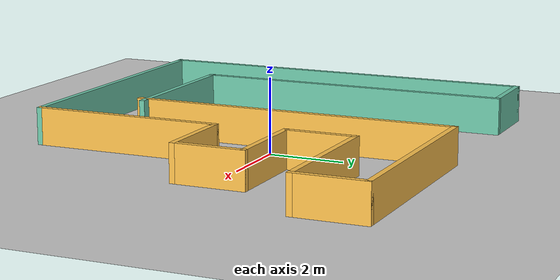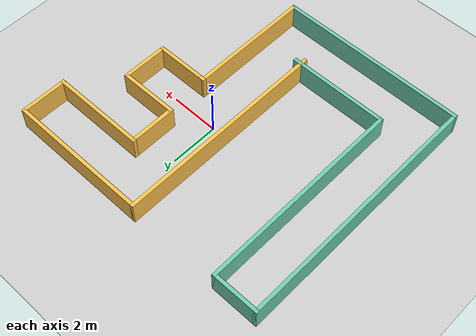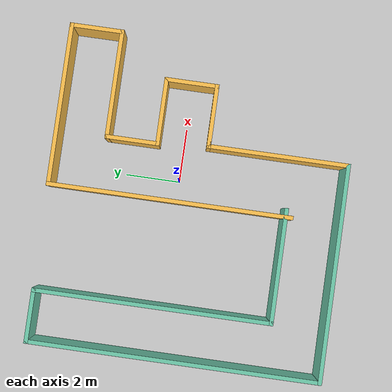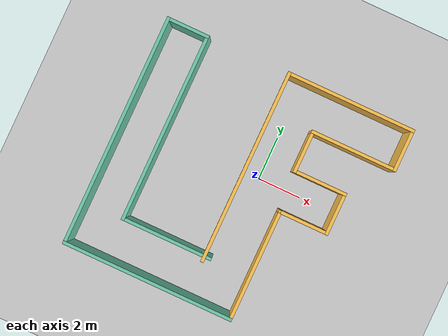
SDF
<sdf version="1.6">
 <world name="default">
  <light name="sun" type="directional">
   <pose>0 0 10 0 -0 0</pose>
   <diffuse>0.8 0.8 0.8 1</diffuse>
   <specular>0.2 0.2 0.2 1</specular>
   <attenuation>
    <range>1000</range>
    <constant>0.9</constant>
    <linear>0.01</linear>
    <quadratic>0.001</quadratic>
   </attenuation>
   <direction>-0.5 0.1 -0.9</direction>
  </light>
  <model name="ground_plane">
   <static>1</static>
   <link name="link">
    <collision name="collision">
     <geometry><plane><normal>0 0 1</normal><size>100 100</size></plane></geometry>
     <surface>
      <contact><collide_bitmask>65535</collide_bitmask></contact>
      <friction><ode><mu>100</mu><mu2>50</mu2></ode></friction>
     </surface>
    </collision>
    <visual name="visual">
     <cast_shadows>0</cast_shadows>
     <geometry><plane><normal>0 0 1</normal><size>100 100</size></plane></geometry>
     <material>
      <script><uri>file://media/materials/scripts/gazebo.material</uri><name>Gazebo/Grey</name></script>
     </material>
    </visual>
   </link>
  </model>
  <gravity>0 0 -9.8</gravity>
  <magnetic_field>6e-06 2.3e-05 -4.2e-05</magnetic_field>
  <atmosphere type="adiabatic"/>
  <physics name="default_physics" default="0" type="ode">
   <max_step_size>0.001</max_step_size>
   <real_time_factor>1</real_time_factor>
   <real_time_update_rate>1000</real_time_update_rate>
  </physics>
  <scene><ambient>0.4 0.4 0.4 1</ambient><background>0.7 0.7 0.7 1</background><shadows>1</shadows></scene>
  <spherical_coordinates>
   <surface_model>EARTH_WGS84</surface_model>
   <latitude_deg>0</latitude_deg>
   <longitude_deg>0</longitude_deg>
   <elevation>0</elevation>
   <heading_deg>0</heading_deg>
  </spherical_coordinates>
  <model name="LF">
   <pose>-0.690322 -0.667378 0 0 -0 0</pose>
   <link name="Wall_0">
    <collision name="Wall_0_Collision">
     <geometry><box><size>9 0.15 1</size></box></geometry>
     <pose>0 0 0.5 0 -0 0</pose>
    </collision>
    <visual name="Wall_0_Visual">
     <pose>0 0 0.5 0 -0 0</pose>
     <geometry><box><size>9 0.15 1</size></box></geometry>
     <material>
      <script><uri>file://media/materials/scripts/gazebo.material</uri><name>Gazebo/Grey</name></script>
      <ambient>1 0.764706 0.305882 1</ambient>
     </material>
     <meta><layer>0</layer></meta>
    </visual>
    <pose>-0.075094 0.9 0 0 -0 1.5708</pose>
   </link>
   <link name="Wall_1">
    <collision name="Wall_1_Collision">
     <geometry><box><size>6 0.15 1</size></box></geometry>
     <pose>0 0 0.5 0 -0 0</pose>
    </collision>
    <visual name="Wall_1_Visual">
     <pose>0 0 0.5 0 -0 0</pose>
     <geometry><box><size>6 0.15 1</size></box></geometry>
     <material>
      <script><uri>file://media/materials/scripts/gazebo.material</uri><name>Gazebo/Grey</name></script>
      <ambient>1 0.764706 0.305882 1</ambient>
     </material>
     <meta><layer>0</layer></meta>
    </visual>
    <pose>2.84991 5.325 0 0 -0 0</pose>
   </link>
   <link name="Wall_10">
    <collision name="Wall_10_Collision">
     <geometry><box><size>8 0.15 1</size></box></geometry>
     <pose>0 0 0.5 0 -0 0</pose>
    </collision>
    <visual name="Wall_10_Visual">
     <pose>0 0 0.5 0 -0 0</pose>
     <geometry><box><size>8 0.15 1</size></box></geometry>
     <material>
      <script><uri>file://media/materials/scripts/gazebo.material</uri><name>Gazebo/Grey</name></script>
      <ambient>0.435294 0.796078 0.67451 1</ambient>
     </material>
     <meta><layer>0</layer></meta>
    </visual>
    <pose>-1.85009 -5.325 0 0 -0 3.14159</pose>
   </link>
   <link name="Wall_11">
    <collision name="Wall_11_Collision">
     <geometry><box><size>10.75 0.15 1</size></box></geometry>
     <pose>0 0 0.5 0 -0 0</pose>
    </collision>
    <visual name="Wall_11_Visual">
     <pose>0 0 0.5 0 -0 0</pose>
     <geometry><box><size>10.75 0.15 1</size></box></geometry>
     <material>
      <script><uri>file://media/materials/scripts/gazebo.material</uri><name>Gazebo/Grey</name></script>
      <ambient>0.435294 0.796078 0.67451 1</ambient>
     </material>
     <meta><layer>0</layer></meta>
    </visual>
    <pose>-5.77509 -0.025 0 0 -0 1.5708</pose>
   </link>
   <link name="Wall_12">
    <collision name="Wall_12_Collision">
     <geometry><box><size>2 0.15 1</size></box></geometry>
     <pose>0 0 0.5 0 -0 0</pose>
    </collision>
    <visual name="Wall_12_Visual">
     <pose>0 0 0.5 0 -0 0</pose>
     <geometry><box><size>2 0.15 1</size></box></geometry>
     <material>
      <script><uri>file://media/materials/scripts/gazebo.material</uri><name>Gazebo/Grey</name></script>
      <ambient>0.435294 0.796078 0.67451 1</ambient>
     </material>
     <meta><layer>0</layer></meta>
    </visual>
    <pose>-4.85009 5.275 0 0 -0 0</pose>
   </link>
   <link name="Wall_13">
    <collision name="Wall_13_Collision">
     <geometry><box><size>8.75 0.15 1</size></box></geometry>
     <pose>0 0 0.5 0 -0 0</pose>
    </collision>
    <visual name="Wall_13_Visual">
     <pose>0 0 0.5 0 -0 0</pose>
     <geometry><box><size>8.75 0.15 1</size></box></geometry>
     <material>
      <script><uri>file://media/materials/scripts/gazebo.material</uri><name>Gazebo/Grey</name></script>
      <ambient>0.435294 0.796078 0.67451 1</ambient>
     </material>
     <meta><layer>0</layer></meta>
    </visual>
    <pose>-3.92509 0.975 0 0 0 -1.5708</pose>
   </link>
   <link name="Wall_14">
    <collision name="Wall_14_Collision">
     <geometry><box><size>4.25 0.15 1</size></box></geometry>
     <pose>0 0 0.5 0 -0 0</pose>
    </collision>
    <visual name="Wall_14_Visual">
     <pose>0 0 0.5 0 -0 0</pose>
     <geometry><box><size>4.25 0.15 1</size></box></geometry>
     <material>
      <script><uri>file://media/materials/scripts/gazebo.material</uri><name>Gazebo/Grey</name></script>
      <ambient>0.435294 0.796078 0.67451 1</ambient>
     </material>
     <meta><layer>0</layer></meta>
    </visual>
    <pose>-1.87509 -3.325 0 0 -0 0</pose>
   </link>
   <link name="Wall_2">
    <collision name="Wall_2_Collision">
     <geometry><box><size>2 0.15 1</size></box></geometry>
     <pose>0 0 0.5 0 -0 0</pose>
    </collision>
    <visual name="Wall_2_Visual">
     <pose>0 0 0.5 0 -0 0</pose>
     <geometry><box><size>2 0.15 1</size></box></geometry>
     <material>
      <script><uri>file://media/materials/scripts/gazebo.material</uri><name>Gazebo/Grey</name></script>
      <ambient>1 0.764706 0.305882 1</ambient>
     </material>
     <meta><layer>0</layer></meta>
    </visual>
    <pose>5.77491 4.4 0 0 0 -1.5708</pose>
   </link>
   <link name="Wall_3">
    <collision name="Wall_3_Collision">
     <geometry><box><size>4.01538 0.15 1</size></box></geometry>
     <pose>0 0 0.5 0 -0 0</pose>
    </collision>
    <visual name="Wall_3_Visual">
     <pose>0 0 0.5 0 -0 0</pose>
     <geometry><box><size>4.01538 0.15 1</size></box></geometry>
     <material>
      <script><uri>file://media/materials/scripts/gazebo.material</uri><name>Gazebo/Grey</name></script>
      <ambient>1 0.764706 0.305882 1</ambient>
     </material>
     <meta><layer>0</layer></meta>
    </visual>
    <pose>3.84241 3.475 0 0 -0 3.14159</pose>
   </link>
   <link name="Wall_4">
    <collision name="Wall_4_Collision">
     <geometry><box><size>1.99956 0.15 1</size></box></geometry>
     <pose>0 0 0.5 0 -0 0</pose>
    </collision>
    <visual name="Wall_4_Visual">
     <pose>0 0 0.5 0 -0 0</pose>
     <geometry><box><size>1.99956 0.15 1</size></box></geometry>
     <material>
      <script><uri>file://media/materials/scripts/gazebo.material</uri><name>Gazebo/Grey</name></script>
      <ambient>1 0.764706 0.305882 1</ambient>
     </material>
     <meta><layer>0</layer></meta>
    </visual>
    <pose>1.90991 2.55 0 0 0 -1.5708</pose>
   </link>
   <link name="Wall_5">
    <collision name="Wall_5_Collision">
     <geometry><box><size>2.515 0.15 1</size></box></geometry>
     <pose>0 0 0.5 0 -0 0</pose>
    </collision>
    <visual name="Wall_5_Visual">
     <pose>0 0 0.5 0 -0 0</pose>
     <geometry><box><size>2.515 0.15 1</size></box></geometry>
     <material>
      <script><uri>file://media/materials/scripts/gazebo.material</uri><name>Gazebo/Grey</name></script>
      <ambient>1 0.764706 0.305882 1</ambient>
     </material>
     <meta><layer>0</layer></meta>
    </visual>
    <pose>3.09241 1.625 0 0 -0 0</pose>
   </link>
   <link name="Wall_6">
    <collision name="Wall_6_Collision">
     <geometry><box><size>2 0.15 1</size></box></geometry>
     <pose>0 0 0.5 0 -0 0</pose>
    </collision>
    <visual name="Wall_6_Visual">
     <pose>0 0 0.5 0 -0 0</pose>
     <geometry><box><size>2 0.15 1</size></box></geometry>
     <material>
      <script><uri>file://media/materials/scripts/gazebo.material</uri><name>Gazebo/Grey</name></script>
      <ambient>1 0.764706 0.305882 1</ambient>
     </material>
     <meta><layer>0</layer></meta>
    </visual>
    <pose>4.27491 0.7 0 0 0 -1.5708</pose>
   </link>
   <link name="Wall_7">
    <collision name="Wall_7_Collision">
     <geometry><box><size>2.25 0.15 1</size></box></geometry>
     <pose>0 0 0.5 0 -0 0</pose>
    </collision>
    <visual name="Wall_7_Visual">
     <pose>0 0 0.5 0 -0 0</pose>
     <geometry><box><size>2.25 0.15 1</size></box></geometry>
     <material>
      <script><uri>file://media/materials/scripts/gazebo.material</uri><name>Gazebo/Grey</name></script>
      <ambient>1 0.764706 0.305882 1</ambient>
     </material>
     <meta><layer>0</layer></meta>
    </visual>
    <pose>3.22491 -0.225 0 0 -0 3.14159</pose>
   </link>
   <link name="Wall_8">
    <collision name="Wall_8_Collision">
     <geometry><box><size>0.25 0.15 1</size></box></geometry>
     <pose>0 0 0.5 0 -0 0</pose>
    </collision>
    <visual name="Wall_8_Visual">
     <pose>0 0 0.5 0 -0 0</pose>
     <geometry><box><size>0.25 0.15 1</size></box></geometry>
     <material>
      <script><uri>file://media/materials/scripts/gazebo.material</uri><name>Gazebo/Grey</name></script>
      <ambient>1 0.764706 0.305882 1</ambient>
     </material>
     <meta><layer>0</layer></meta>
    </visual>
    <pose>2.12491 -0.225 0 0 -0 3.14159</pose>
   </link>
   <link name="Wall_9">
    <collision name="Wall_9_Collision">
     <geometry><box><size>5.25 0.15 1</size></box></geometry>
     <pose>0 0 0.5 0 -0 0</pose>
    </collision>
    <visual name="Wall_9_Visual">
     <pose>0 0 0.5 0 -0 0</pose>
     <geometry><box><size>5.25 0.15 1</size></box></geometry>
     <material>
      <script><uri>file://media/materials/scripts/gazebo.material</uri><name>Gazebo/Grey</name></script>
      <ambient>1 0.764706 0.305882 1</ambient>
     </material>
     <meta><layer>0</layer></meta>
    </visual>
    <pose>2.07491 -2.775 0 0 0 -1.5708</pose>
   </link>
   <static>1</static>
  </model>
 </world>
</sdf>
